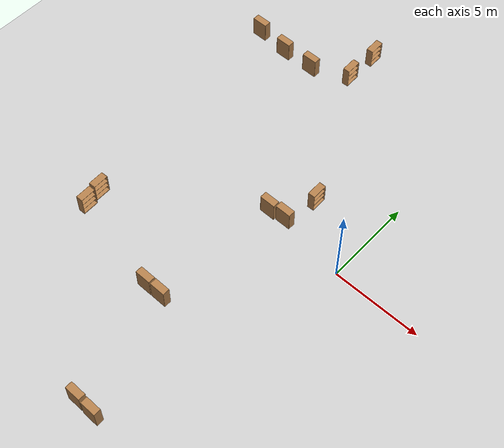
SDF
<sdf version="1.6">
 <world name="default">
  <model name="ground_plane">
   <static>1</static>
   <link name="link">
    <collision name="collision">
     <geometry><plane><normal>0 0 1</normal><size>100 100</size></plane></geometry>
     <surface>
      <contact><collide_bitmask>65535</collide_bitmask></contact>
      <friction><ode><mu>100</mu><mu2>50</mu2></ode></friction>
     </surface>
    </collision>
    <visual name="visual">
     <cast_shadows>0</cast_shadows>
     <geometry><plane><normal>0 0 1</normal><size>100 100</size></plane></geometry>
     <material>
      <script><uri>file://media/materials/scripts/gazebo.material</uri><name>Gazebo/Grey</name></script>
     </material>
    </visual>
   </link>
  </model>
  <model name="bookshelf_clone_clone_clone_0_clone_0_clone_3_clone_0_clone_clone_clone_clone_0_clone_clone">
   <static>1</static>
   <link name="link">
    <inertial><mass>1</mass></inertial>
    <collision name="back">
     <pose>0 0.005 0.6 0 -0 0</pose>
     <geometry><box><size>0.9 0.01 1.2</size></box></geometry>
    </collision>
    <visual name="visual1">
     <pose>0 0.005 0.6 0 -0 0</pose>
     <geometry><box><size>0.9 0.01 1.2</size></box></geometry>
     <material>
      <script><uri>file://media/materials/scripts/gazebo.material</uri><name>Gazebo/Wood</name></script>
     </material>
    </visual>
    <collision name="left_side">
     <pose>0.45 -0.195 0.6 0 -0 0</pose>
     <geometry><box><size>0.02 0.4 1.2</size></box></geometry>
    </collision>
    <visual name="visual2">
     <pose>0.45 -0.195 0.6 0 -0 0</pose>
     <geometry><box><size>0.02 0.4 1.2</size></box></geometry>
     <material>
      <script><uri>file://media/materials/scripts/gazebo.material</uri><name>Gazebo/Wood</name></script>
     </material>
    </visual>
    <collision name="right_side">
     <pose>-0.45 -0.195 0.6 0 -0 0</pose>
     <geometry><box><size>0.02 0.4 1.2</size></box></geometry>
    </collision>
    <visual name="visual3">
     <pose>-0.45 -0.195 0.6 0 -0 0</pose>
     <geometry><box><size>0.02 0.4 1.2</size></box></geometry>
     <material>
      <script><uri>file://media/materials/scripts/gazebo.material</uri><name>Gazebo/Wood</name></script>
     </material>
    </visual>
    <collision name="bottom">
     <pose>0 -0.195 0.03 0 -0 0</pose>
     <geometry><box><size>0.88 0.4 0.06</size></box></geometry>
    </collision>
    <visual name="visual4">
     <pose>0 -0.195 0.03 0 -0 0</pose>
     <geometry><box><size>0.88 0.4 0.06</size></box></geometry>
     <material>
      <script><uri>file://media/materials/scripts/gazebo.material</uri><name>Gazebo/Wood</name></script>
     </material>
    </visual>
    <collision name="top">
     <pose>0 -0.195 1.19 0 -0 0</pose>
     <geometry><box><size>0.88 0.4 0.02</size></box></geometry>
    </collision>
    <visual name="visual5">
     <pose>0 -0.195 1.19 0 -0 0</pose>
     <geometry><box><size>0.88 0.4 0.02</size></box></geometry>
     <material>
      <script><uri>file://media/materials/scripts/gazebo.material</uri><name>Gazebo/Wood</name></script>
     </material>
    </visual>
    <collision name="low_shelf">
     <pose>0 -0.195 0.43 0 -0 0</pose>
     <geometry><box><size>0.88 0.4 0.02</size></box></geometry>
    </collision>
    <visual name="visual6">
     <pose>0 -0.195 0.43 0 -0 0</pose>
     <geometry><box><size>0.88 0.4 0.02</size></box></geometry>
     <material>
      <script><uri>file://media/materials/scripts/gazebo.material</uri><name>Gazebo/Wood</name></script>
     </material>
    </visual>
    <collision name="high_shelf">
     <pose>0 -0.195 0.8 0 -0 0</pose>
     <geometry><box><size>0.88 0.4 0.02</size></box></geometry>
    </collision>
    <visual name="visual7">
     <pose>0 -0.195 0.8 0 -0 0</pose>
     <geometry><box><size>0.88 0.4 0.02</size></box></geometry>
     <material>
      <script><uri>file://media/materials/scripts/gazebo.material</uri><name>Gazebo/Wood</name></script>
     </material>
    </visual>
   </link>
   <pose>-3.7014 2.55568 0 0 -0 1.59147</pose>
  </model>
  <model name="bookshelf_clone_clone_clone_0_clone_0_clone_3_clone_clone_1_clone_clone_clone_clone">
   <static>1</static>
   <link name="link">
    <inertial><mass>1</mass></inertial>
    <collision name="back">
     <pose>0 0.005 0.6 0 -0 0</pose>
     <geometry><box><size>0.9 0.01 1.2</size></box></geometry>
    </collision>
    <visual name="visual1">
     <pose>0 0.005 0.6 0 -0 0</pose>
     <geometry><box><size>0.9 0.01 1.2</size></box></geometry>
     <material>
      <script><uri>file://media/materials/scripts/gazebo.material</uri><name>Gazebo/Wood</name></script>
     </material>
    </visual>
    <collision name="left_side">
     <pose>0.45 -0.195 0.6 0 -0 0</pose>
     <geometry><box><size>0.02 0.4 1.2</size></box></geometry>
    </collision>
    <visual name="visual2">
     <pose>0.45 -0.195 0.6 0 -0 0</pose>
     <geometry><box><size>0.02 0.4 1.2</size></box></geometry>
     <material>
      <script><uri>file://media/materials/scripts/gazebo.material</uri><name>Gazebo/Wood</name></script>
     </material>
    </visual>
    <collision name="right_side">
     <pose>-0.45 -0.195 0.6 0 -0 0</pose>
     <geometry><box><size>0.02 0.4 1.2</size></box></geometry>
    </collision>
    <visual name="visual3">
     <pose>-0.45 -0.195 0.6 0 -0 0</pose>
     <geometry><box><size>0.02 0.4 1.2</size></box></geometry>
     <material>
      <script><uri>file://media/materials/scripts/gazebo.material</uri><name>Gazebo/Wood</name></script>
     </material>
    </visual>
    <collision name="bottom">
     <pose>0 -0.195 0.03 0 -0 0</pose>
     <geometry><box><size>0.88 0.4 0.06</size></box></geometry>
    </collision>
    <visual name="visual4">
     <pose>0 -0.195 0.03 0 -0 0</pose>
     <geometry><box><size>0.88 0.4 0.06</size></box></geometry>
     <material>
      <script><uri>file://media/materials/scripts/gazebo.material</uri><name>Gazebo/Wood</name></script>
     </material>
    </visual>
    <collision name="top">
     <pose>0 -0.195 1.19 0 -0 0</pose>
     <geometry><box><size>0.88 0.4 0.02</size></box></geometry>
    </collision>
    <visual name="visual5">
     <pose>0 -0.195 1.19 0 -0 0</pose>
     <geometry><box><size>0.88 0.4 0.02</size></box></geometry>
     <material>
      <script><uri>file://media/materials/scripts/gazebo.material</uri><name>Gazebo/Wood</name></script>
     </material>
    </visual>
    <collision name="low_shelf">
     <pose>0 -0.195 0.43 0 -0 0</pose>
     <geometry><box><size>0.88 0.4 0.02</size></box></geometry>
    </collision>
    <visual name="visual6">
     <pose>0 -0.195 0.43 0 -0 0</pose>
     <geometry><box><size>0.88 0.4 0.02</size></box></geometry>
     <material>
      <script><uri>file://media/materials/scripts/gazebo.material</uri><name>Gazebo/Wood</name></script>
     </material>
    </visual>
    <collision name="high_shelf">
     <pose>0 -0.195 0.8 0 -0 0</pose>
     <geometry><box><size>0.88 0.4 0.02</size></box></geometry>
    </collision>
    <visual name="visual7">
     <pose>0 -0.195 0.8 0 -0 0</pose>
     <geometry><box><size>0.88 0.4 0.02</size></box></geometry>
     <material>
      <script><uri>file://media/materials/scripts/gazebo.material</uri><name>Gazebo/Wood</name></script>
     </material>
    </visual>
   </link>
   <pose>-3.93703 0.396484 0 0 -0 3.1368</pose>
  </model>
  <model name="bookshelf_clone_clone_clone_0_clone_0_clone_3_clone_clone_1_clone_clone_clone_clone_0">
   <static>1</static>
   <link name="link">
    <inertial><mass>1</mass></inertial>
    <collision name="back">
     <pose>0 0.005 0.6 0 -0 0</pose>
     <geometry><box><size>0.9 0.01 1.2</size></box></geometry>
    </collision>
    <visual name="visual1">
     <pose>0 0.005 0.6 0 -0 0</pose>
     <geometry><box><size>0.9 0.01 1.2</size></box></geometry>
     <material>
      <script><uri>file://media/materials/scripts/gazebo.material</uri><name>Gazebo/Wood</name></script>
     </material>
    </visual>
    <collision name="left_side">
     <pose>0.45 -0.195 0.6 0 -0 0</pose>
     <geometry><box><size>0.02 0.4 1.2</size></box></geometry>
    </collision>
    <visual name="visual2">
     <pose>0.45 -0.195 0.6 0 -0 0</pose>
     <geometry><box><size>0.02 0.4 1.2</size></box></geometry>
     <material>
      <script><uri>file://media/materials/scripts/gazebo.material</uri><name>Gazebo/Wood</name></script>
     </material>
    </visual>
    <collision name="right_side">
     <pose>-0.45 -0.195 0.6 0 -0 0</pose>
     <geometry><box><size>0.02 0.4 1.2</size></box></geometry>
    </collision>
    <visual name="visual3">
     <pose>-0.45 -0.195 0.6 0 -0 0</pose>
     <geometry><box><size>0.02 0.4 1.2</size></box></geometry>
     <material>
      <script><uri>file://media/materials/scripts/gazebo.material</uri><name>Gazebo/Wood</name></script>
     </material>
    </visual>
    <collision name="bottom">
     <pose>0 -0.195 0.03 0 -0 0</pose>
     <geometry><box><size>0.88 0.4 0.06</size></box></geometry>
    </collision>
    <visual name="visual4">
     <pose>0 -0.195 0.03 0 -0 0</pose>
     <geometry><box><size>0.88 0.4 0.06</size></box></geometry>
     <material>
      <script><uri>file://media/materials/scripts/gazebo.material</uri><name>Gazebo/Wood</name></script>
     </material>
    </visual>
    <collision name="top">
     <pose>0 -0.195 1.19 0 -0 0</pose>
     <geometry><box><size>0.88 0.4 0.02</size></box></geometry>
    </collision>
    <visual name="visual5">
     <pose>0 -0.195 1.19 0 -0 0</pose>
     <geometry><box><size>0.88 0.4 0.02</size></box></geometry>
     <material>
      <script><uri>file://media/materials/scripts/gazebo.material</uri><name>Gazebo/Wood</name></script>
     </material>
    </visual>
    <collision name="low_shelf">
     <pose>0 -0.195 0.43 0 -0 0</pose>
     <geometry><box><size>0.88 0.4 0.02</size></box></geometry>
    </collision>
    <visual name="visual6">
     <pose>0 -0.195 0.43 0 -0 0</pose>
     <geometry><box><size>0.88 0.4 0.02</size></box></geometry>
     <material>
      <script><uri>file://media/materials/scripts/gazebo.material</uri><name>Gazebo/Wood</name></script>
     </material>
    </visual>
    <collision name="high_shelf">
     <pose>0 -0.195 0.8 0 -0 0</pose>
     <geometry><box><size>0.88 0.4 0.02</size></box></geometry>
    </collision>
    <visual name="visual7">
     <pose>0 -0.195 0.8 0 -0 0</pose>
     <geometry><box><size>0.88 0.4 0.02</size></box></geometry>
     <material>
      <script><uri>file://media/materials/scripts/gazebo.material</uri><name>Gazebo/Wood</name></script>
     </material>
    </visual>
   </link>
   <pose>-4.90125 0.298525 0 0 -0 3.1368</pose>
  </model>
  <model name="bookshelf_clone_clone_clone_0_clone_0_clone_3_clone_clone_1_clone_clone_clone_clone_clone">
   <static>1</static>
   <link name="link">
    <inertial><mass>1</mass></inertial>
    <collision name="back">
     <pose>0 0.005 0.6 0 -0 0</pose>
     <geometry><box><size>0.9 0.01 1.2</size></box></geometry>
    </collision>
    <visual name="visual1">
     <pose>0 0.005 0.6 0 -0 0</pose>
     <geometry><box><size>0.9 0.01 1.2</size></box></geometry>
     <material>
      <script><uri>file://media/materials/scripts/gazebo.material</uri><name>Gazebo/Wood</name></script>
     </material>
    </visual>
    <collision name="left_side">
     <pose>0.45 -0.195 0.6 0 -0 0</pose>
     <geometry><box><size>0.02 0.4 1.2</size></box></geometry>
    </collision>
    <visual name="visual2">
     <pose>0.45 -0.195 0.6 0 -0 0</pose>
     <geometry><box><size>0.02 0.4 1.2</size></box></geometry>
     <material>
      <script><uri>file://media/materials/scripts/gazebo.material</uri><name>Gazebo/Wood</name></script>
     </material>
    </visual>
    <collision name="right_side">
     <pose>-0.45 -0.195 0.6 0 -0 0</pose>
     <geometry><box><size>0.02 0.4 1.2</size></box></geometry>
    </collision>
    <visual name="visual3">
     <pose>-0.45 -0.195 0.6 0 -0 0</pose>
     <geometry><box><size>0.02 0.4 1.2</size></box></geometry>
     <material>
      <script><uri>file://media/materials/scripts/gazebo.material</uri><name>Gazebo/Wood</name></script>
     </material>
    </visual>
    <collision name="bottom">
     <pose>0 -0.195 0.03 0 -0 0</pose>
     <geometry><box><size>0.88 0.4 0.06</size></box></geometry>
    </collision>
    <visual name="visual4">
     <pose>0 -0.195 0.03 0 -0 0</pose>
     <geometry><box><size>0.88 0.4 0.06</size></box></geometry>
     <material>
      <script><uri>file://media/materials/scripts/gazebo.material</uri><name>Gazebo/Wood</name></script>
     </material>
    </visual>
    <collision name="top">
     <pose>0 -0.195 1.19 0 -0 0</pose>
     <geometry><box><size>0.88 0.4 0.02</size></box></geometry>
    </collision>
    <visual name="visual5">
     <pose>0 -0.195 1.19 0 -0 0</pose>
     <geometry><box><size>0.88 0.4 0.02</size></box></geometry>
     <material>
      <script><uri>file://media/materials/scripts/gazebo.material</uri><name>Gazebo/Wood</name></script>
     </material>
    </visual>
    <collision name="low_shelf">
     <pose>0 -0.195 0.43 0 -0 0</pose>
     <geometry><box><size>0.88 0.4 0.02</size></box></geometry>
    </collision>
    <visual name="visual6">
     <pose>0 -0.195 0.43 0 -0 0</pose>
     <geometry><box><size>0.88 0.4 0.02</size></box></geometry>
     <material>
      <script><uri>file://media/materials/scripts/gazebo.material</uri><name>Gazebo/Wood</name></script>
     </material>
    </visual>
    <collision name="high_shelf">
     <pose>0 -0.195 0.8 0 -0 0</pose>
     <geometry><box><size>0.88 0.4 0.02</size></box></geometry>
    </collision>
    <visual name="visual7">
     <pose>0 -0.195 0.8 0 -0 0</pose>
     <geometry><box><size>0.88 0.4 0.02</size></box></geometry>
     <material>
      <script><uri>file://media/materials/scripts/gazebo.material</uri><name>Gazebo/Wood</name></script>
     </material>
    </visual>
   </link>
   <pose>-3.38403 -13.4046 0 0 -0 3.1368</pose>
  </model>
  <model name="bookshelf_clone_clone_clone_0_clone_0_clone_3_clone_clone_1_clone_clone_clone_clone_clone_0">
   <static>1</static>
   <link name="link">
    <inertial><mass>1</mass></inertial>
    <collision name="back">
     <pose>0 0.005 0.6 0 -0 0</pose>
     <geometry><box><size>0.9 0.01 1.2</size></box></geometry>
    </collision>
    <visual name="visual1">
     <pose>0 0.005 0.6 0 -0 0</pose>
     <geometry><box><size>0.9 0.01 1.2</size></box></geometry>
     <material>
      <script><uri>file://media/materials/scripts/gazebo.material</uri><name>Gazebo/Wood</name></script>
     </material>
    </visual>
    <collision name="left_side">
     <pose>0.45 -0.195 0.6 0 -0 0</pose>
     <geometry><box><size>0.02 0.4 1.2</size></box></geometry>
    </collision>
    <visual name="visual2">
     <pose>0.45 -0.195 0.6 0 -0 0</pose>
     <geometry><box><size>0.02 0.4 1.2</size></box></geometry>
     <material>
      <script><uri>file://media/materials/scripts/gazebo.material</uri><name>Gazebo/Wood</name></script>
     </material>
    </visual>
    <collision name="right_side">
     <pose>-0.45 -0.195 0.6 0 -0 0</pose>
     <geometry><box><size>0.02 0.4 1.2</size></box></geometry>
    </collision>
    <visual name="visual3">
     <pose>-0.45 -0.195 0.6 0 -0 0</pose>
     <geometry><box><size>0.02 0.4 1.2</size></box></geometry>
     <material>
      <script><uri>file://media/materials/scripts/gazebo.material</uri><name>Gazebo/Wood</name></script>
     </material>
    </visual>
    <collision name="bottom">
     <pose>0 -0.195 0.03 0 -0 0</pose>
     <geometry><box><size>0.88 0.4 0.06</size></box></geometry>
    </collision>
    <visual name="visual4">
     <pose>0 -0.195 0.03 0 -0 0</pose>
     <geometry><box><size>0.88 0.4 0.06</size></box></geometry>
     <material>
      <script><uri>file://media/materials/scripts/gazebo.material</uri><name>Gazebo/Wood</name></script>
     </material>
    </visual>
    <collision name="top">
     <pose>0 -0.195 1.19 0 -0 0</pose>
     <geometry><box><size>0.88 0.4 0.02</size></box></geometry>
    </collision>
    <visual name="visual5">
     <pose>0 -0.195 1.19 0 -0 0</pose>
     <geometry><box><size>0.88 0.4 0.02</size></box></geometry>
     <material>
      <script><uri>file://media/materials/scripts/gazebo.material</uri><name>Gazebo/Wood</name></script>
     </material>
    </visual>
    <collision name="low_shelf">
     <pose>0 -0.195 0.43 0 -0 0</pose>
     <geometry><box><size>0.88 0.4 0.02</size></box></geometry>
    </collision>
    <visual name="visual6">
     <pose>0 -0.195 0.43 0 -0 0</pose>
     <geometry><box><size>0.88 0.4 0.02</size></box></geometry>
     <material>
      <script><uri>file://media/materials/scripts/gazebo.material</uri><name>Gazebo/Wood</name></script>
     </material>
    </visual>
    <collision name="high_shelf">
     <pose>0 -0.195 0.8 0 -0 0</pose>
     <geometry><box><size>0.88 0.4 0.02</size></box></geometry>
    </collision>
    <visual name="visual7">
     <pose>0 -0.195 0.8 0 -0 0</pose>
     <geometry><box><size>0.88 0.4 0.02</size></box></geometry>
     <material>
      <script><uri>file://media/materials/scripts/gazebo.material</uri><name>Gazebo/Wood</name></script>
     </material>
    </visual>
   </link>
   <pose>-4.43219 -13.3705 0 0 -0 3.1368</pose>
  </model>
  <model name="bookshelf_clone_clone_clone_0_clone_0_clone_3_clone_clone_1_clone_clone_clone_clone_clone_1">
   <static>1</static>
   <link name="link">
    <inertial><mass>1</mass></inertial>
    <collision name="back">
     <pose>0 0.005 0.6 0 -0 0</pose>
     <geometry><box><size>0.9 0.01 1.2</size></box></geometry>
    </collision>
    <visual name="visual1">
     <pose>0 0.005 0.6 0 -0 0</pose>
     <geometry><box><size>0.9 0.01 1.2</size></box></geometry>
     <material>
      <script><uri>file://media/materials/scripts/gazebo.material</uri><name>Gazebo/Wood</name></script>
     </material>
    </visual>
    <collision name="left_side">
     <pose>0.45 -0.195 0.6 0 -0 0</pose>
     <geometry><box><size>0.02 0.4 1.2</size></box></geometry>
    </collision>
    <visual name="visual2">
     <pose>0.45 -0.195 0.6 0 -0 0</pose>
     <geometry><box><size>0.02 0.4 1.2</size></box></geometry>
     <material>
      <script><uri>file://media/materials/scripts/gazebo.material</uri><name>Gazebo/Wood</name></script>
     </material>
    </visual>
    <collision name="right_side">
     <pose>-0.45 -0.195 0.6 0 -0 0</pose>
     <geometry><box><size>0.02 0.4 1.2</size></box></geometry>
    </collision>
    <visual name="visual3">
     <pose>-0.45 -0.195 0.6 0 -0 0</pose>
     <geometry><box><size>0.02 0.4 1.2</size></box></geometry>
     <material>
      <script><uri>file://media/materials/scripts/gazebo.material</uri><name>Gazebo/Wood</name></script>
     </material>
    </visual>
    <collision name="bottom">
     <pose>0 -0.195 0.03 0 -0 0</pose>
     <geometry><box><size>0.88 0.4 0.06</size></box></geometry>
    </collision>
    <visual name="visual4">
     <pose>0 -0.195 0.03 0 -0 0</pose>
     <geometry><box><size>0.88 0.4 0.06</size></box></geometry>
     <material>
      <script><uri>file://media/materials/scripts/gazebo.material</uri><name>Gazebo/Wood</name></script>
     </material>
    </visual>
    <collision name="top">
     <pose>0 -0.195 1.19 0 -0 0</pose>
     <geometry><box><size>0.88 0.4 0.02</size></box></geometry>
    </collision>
    <visual name="visual5">
     <pose>0 -0.195 1.19 0 -0 0</pose>
     <geometry><box><size>0.88 0.4 0.02</size></box></geometry>
     <material>
      <script><uri>file://media/materials/scripts/gazebo.material</uri><name>Gazebo/Wood</name></script>
     </material>
    </visual>
    <collision name="low_shelf">
     <pose>0 -0.195 0.43 0 -0 0</pose>
     <geometry><box><size>0.88 0.4 0.02</size></box></geometry>
    </collision>
    <visual name="visual6">
     <pose>0 -0.195 0.43 0 -0 0</pose>
     <geometry><box><size>0.88 0.4 0.02</size></box></geometry>
     <material>
      <script><uri>file://media/materials/scripts/gazebo.material</uri><name>Gazebo/Wood</name></script>
     </material>
    </visual>
    <collision name="high_shelf">
     <pose>0 -0.195 0.8 0 -0 0</pose>
     <geometry><box><size>0.88 0.4 0.02</size></box></geometry>
    </collision>
    <visual name="visual7">
     <pose>0 -0.195 0.8 0 -0 0</pose>
     <geometry><box><size>0.88 0.4 0.02</size></box></geometry>
     <material>
      <script><uri>file://media/materials/scripts/gazebo.material</uri><name>Gazebo/Wood</name></script>
     </material>
    </visual>
   </link>
   <pose>-5.43616 -7.03663 0 0 -0 3.1368</pose>
  </model>
  <model name="bookshelf_clone_clone_clone_0_clone_0_clone_3_clone_clone_1_clone_clone_clone_clone_clone_2">
   <static>1</static>
   <link name="link">
    <inertial><mass>1</mass></inertial>
    <collision name="back">
     <pose>0 0.005 0.6 0 -0 0</pose>
     <geometry><box><size>0.9 0.01 1.2</size></box></geometry>
    </collision>
    <visual name="visual1">
     <pose>0 0.005 0.6 0 -0 0</pose>
     <geometry><box><size>0.9 0.01 1.2</size></box></geometry>
     <material>
      <script><uri>file://media/materials/scripts/gazebo.material</uri><name>Gazebo/Wood</name></script>
     </material>
    </visual>
    <collision name="left_side">
     <pose>0.45 -0.195 0.6 0 -0 0</pose>
     <geometry><box><size>0.02 0.4 1.2</size></box></geometry>
    </collision>
    <visual name="visual2">
     <pose>0.45 -0.195 0.6 0 -0 0</pose>
     <geometry><box><size>0.02 0.4 1.2</size></box></geometry>
     <material>
      <script><uri>file://media/materials/scripts/gazebo.material</uri><name>Gazebo/Wood</name></script>
     </material>
    </visual>
    <collision name="right_side">
     <pose>-0.45 -0.195 0.6 0 -0 0</pose>
     <geometry><box><size>0.02 0.4 1.2</size></box></geometry>
    </collision>
    <visual name="visual3">
     <pose>-0.45 -0.195 0.6 0 -0 0</pose>
     <geometry><box><size>0.02 0.4 1.2</size></box></geometry>
     <material>
      <script><uri>file://media/materials/scripts/gazebo.material</uri><name>Gazebo/Wood</name></script>
     </material>
    </visual>
    <collision name="bottom">
     <pose>0 -0.195 0.03 0 -0 0</pose>
     <geometry><box><size>0.88 0.4 0.06</size></box></geometry>
    </collision>
    <visual name="visual4">
     <pose>0 -0.195 0.03 0 -0 0</pose>
     <geometry><box><size>0.88 0.4 0.06</size></box></geometry>
     <material>
      <script><uri>file://media/materials/scripts/gazebo.material</uri><name>Gazebo/Wood</name></script>
     </material>
    </visual>
    <collision name="top">
     <pose>0 -0.195 1.19 0 -0 0</pose>
     <geometry><box><size>0.88 0.4 0.02</size></box></geometry>
    </collision>
    <visual name="visual5">
     <pose>0 -0.195 1.19 0 -0 0</pose>
     <geometry><box><size>0.88 0.4 0.02</size></box></geometry>
     <material>
      <script><uri>file://media/materials/scripts/gazebo.material</uri><name>Gazebo/Wood</name></script>
     </material>
    </visual>
    <collision name="low_shelf">
     <pose>0 -0.195 0.43 0 -0 0</pose>
     <geometry><box><size>0.88 0.4 0.02</size></box></geometry>
    </collision>
    <visual name="visual6">
     <pose>0 -0.195 0.43 0 -0 0</pose>
     <geometry><box><size>0.88 0.4 0.02</size></box></geometry>
     <material>
      <script><uri>file://media/materials/scripts/gazebo.material</uri><name>Gazebo/Wood</name></script>
     </material>
    </visual>
    <collision name="high_shelf">
     <pose>0 -0.195 0.8 0 -0 0</pose>
     <geometry><box><size>0.88 0.4 0.02</size></box></geometry>
    </collision>
    <visual name="visual7">
     <pose>0 -0.195 0.8 0 -0 0</pose>
     <geometry><box><size>0.88 0.4 0.02</size></box></geometry>
     <material>
      <script><uri>file://media/materials/scripts/gazebo.material</uri><name>Gazebo/Wood</name></script>
     </material>
    </visual>
   </link>
   <pose>-6.4145 -7.03785 0 0 -0 3.1368</pose>
  </model>
  <model name="bookshelf_clone_clone_clone_0_clone_0_clone_3_clone_0_clone_clone_clone_clone_0_clone_clone_clone_0_clone_clone_0">
   <static>1</static>
   <link name="link">
    <inertial><mass>1</mass></inertial>
    <collision name="back">
     <pose>0 0.005 0.6 0 -0 0</pose>
     <geometry><box><size>0.9 0.01 1.2</size></box></geometry>
    </collision>
    <visual name="visual1">
     <pose>0 0.005 0.6 0 -0 0</pose>
     <geometry><box><size>0.9 0.01 1.2</size></box></geometry>
     <material>
      <script><uri>file://media/materials/scripts/gazebo.material</uri><name>Gazebo/Wood</name></script>
     </material>
    </visual>
    <collision name="left_side">
     <pose>0.45 -0.195 0.6 0 -0 0</pose>
     <geometry><box><size>0.02 0.4 1.2</size></box></geometry>
    </collision>
    <visual name="visual2">
     <pose>0.45 -0.195 0.6 0 -0 0</pose>
     <geometry><box><size>0.02 0.4 1.2</size></box></geometry>
     <material>
      <script><uri>file://media/materials/scripts/gazebo.material</uri><name>Gazebo/Wood</name></script>
     </material>
    </visual>
    <collision name="right_side">
     <pose>-0.45 -0.195 0.6 0 -0 0</pose>
     <geometry><box><size>0.02 0.4 1.2</size></box></geometry>
    </collision>
    <visual name="visual3">
     <pose>-0.45 -0.195 0.6 0 -0 0</pose>
     <geometry><box><size>0.02 0.4 1.2</size></box></geometry>
     <material>
      <script><uri>file://media/materials/scripts/gazebo.material</uri><name>Gazebo/Wood</name></script>
     </material>
    </visual>
    <collision name="bottom">
     <pose>0 -0.195 0.03 0 -0 0</pose>
     <geometry><box><size>0.88 0.4 0.06</size></box></geometry>
    </collision>
    <visual name="visual4">
     <pose>0 -0.195 0.03 0 -0 0</pose>
     <geometry><box><size>0.88 0.4 0.06</size></box></geometry>
     <material>
      <script><uri>file://media/materials/scripts/gazebo.material</uri><name>Gazebo/Wood</name></script>
     </material>
    </visual>
    <collision name="top">
     <pose>0 -0.195 1.19 0 -0 0</pose>
     <geometry><box><size>0.88 0.4 0.02</size></box></geometry>
    </collision>
    <visual name="visual5">
     <pose>0 -0.195 1.19 0 -0 0</pose>
     <geometry><box><size>0.88 0.4 0.02</size></box></geometry>
     <material>
      <script><uri>file://media/materials/scripts/gazebo.material</uri><name>Gazebo/Wood</name></script>
     </material>
    </visual>
    <collision name="low_shelf">
     <pose>0 -0.195 0.43 0 -0 0</pose>
     <geometry><box><size>0.88 0.4 0.02</size></box></geometry>
    </collision>
    <visual name="visual6">
     <pose>0 -0.195 0.43 0 -0 0</pose>
     <geometry><box><size>0.88 0.4 0.02</size></box></geometry>
     <material>
      <script><uri>file://media/materials/scripts/gazebo.material</uri><name>Gazebo/Wood</name></script>
     </material>
    </visual>
    <collision name="high_shelf">
     <pose>0 -0.195 0.8 0 -0 0</pose>
     <geometry><box><size>0.88 0.4 0.02</size></box></geometry>
    </collision>
    <visual name="visual7">
     <pose>0 -0.195 0.8 0 -0 0</pose>
     <geometry><box><size>0.88 0.4 0.02</size></box></geometry>
     <material>
      <script><uri>file://media/materials/scripts/gazebo.material</uri><name>Gazebo/Wood</name></script>
     </material>
    </visual>
   </link>
   <pose>-12.4051 -4.5694 0 0 -0 1.59147</pose>
  </model>
  <model name="bookshelf_clone_clone_clone_0_clone_0_clone_3_clone_0_clone_clone_clone_clone_0_clone_clone_clone_0_clone_clone_1">
   <static>1</static>
   <link name="link">
    <inertial><mass>1</mass></inertial>
    <collision name="back">
     <pose>0 0.005 0.6 0 -0 0</pose>
     <geometry><box><size>0.9 0.01 1.2</size></box></geometry>
    </collision>
    <visual name="visual1">
     <pose>0 0.005 0.6 0 -0 0</pose>
     <geometry><box><size>0.9 0.01 1.2</size></box></geometry>
     <material>
      <script><uri>file://media/materials/scripts/gazebo.material</uri><name>Gazebo/Wood</name></script>
     </material>
    </visual>
    <collision name="left_side">
     <pose>0.45 -0.195 0.6 0 -0 0</pose>
     <geometry><box><size>0.02 0.4 1.2</size></box></geometry>
    </collision>
    <visual name="visual2">
     <pose>0.45 -0.195 0.6 0 -0 0</pose>
     <geometry><box><size>0.02 0.4 1.2</size></box></geometry>
     <material>
      <script><uri>file://media/materials/scripts/gazebo.material</uri><name>Gazebo/Wood</name></script>
     </material>
    </visual>
    <collision name="right_side">
     <pose>-0.45 -0.195 0.6 0 -0 0</pose>
     <geometry><box><size>0.02 0.4 1.2</size></box></geometry>
    </collision>
    <visual name="visual3">
     <pose>-0.45 -0.195 0.6 0 -0 0</pose>
     <geometry><box><size>0.02 0.4 1.2</size></box></geometry>
     <material>
      <script><uri>file://media/materials/scripts/gazebo.material</uri><name>Gazebo/Wood</name></script>
     </material>
    </visual>
    <collision name="bottom">
     <pose>0 -0.195 0.03 0 -0 0</pose>
     <geometry><box><size>0.88 0.4 0.06</size></box></geometry>
    </collision>
    <visual name="visual4">
     <pose>0 -0.195 0.03 0 -0 0</pose>
     <geometry><box><size>0.88 0.4 0.06</size></box></geometry>
     <material>
      <script><uri>file://media/materials/scripts/gazebo.material</uri><name>Gazebo/Wood</name></script>
     </material>
    </visual>
    <collision name="top">
     <pose>0 -0.195 1.19 0 -0 0</pose>
     <geometry><box><size>0.88 0.4 0.02</size></box></geometry>
    </collision>
    <visual name="visual5">
     <pose>0 -0.195 1.19 0 -0 0</pose>
     <geometry><box><size>0.88 0.4 0.02</size></box></geometry>
     <material>
      <script><uri>file://media/materials/scripts/gazebo.material</uri><name>Gazebo/Wood</name></script>
     </material>
    </visual>
    <collision name="low_shelf">
     <pose>0 -0.195 0.43 0 -0 0</pose>
     <geometry><box><size>0.88 0.4 0.02</size></box></geometry>
    </collision>
    <visual name="visual6">
     <pose>0 -0.195 0.43 0 -0 0</pose>
     <geometry><box><size>0.88 0.4 0.02</size></box></geometry>
     <material>
      <script><uri>file://media/materials/scripts/gazebo.material</uri><name>Gazebo/Wood</name></script>
     </material>
    </visual>
    <collision name="high_shelf">
     <pose>0 -0.195 0.8 0 -0 0</pose>
     <geometry><box><size>0.88 0.4 0.02</size></box></geometry>
    </collision>
    <visual name="visual7">
     <pose>0 -0.195 0.8 0 -0 0</pose>
     <geometry><box><size>0.88 0.4 0.02</size></box></geometry>
     <material>
      <script><uri>file://media/materials/scripts/gazebo.material</uri><name>Gazebo/Wood</name></script>
     </material>
    </visual>
   </link>
   <pose>-12.2622 -5.57408 0 0 -0 1.59147</pose>
  </model>
  <model name="bookshelf_clone_clone_clone_0_clone_0_clone_3_clone_clone_1_clone_clone_clone_clone_clone_4">
   <static>1</static>
   <link name="link">
    <inertial><mass>1</mass></inertial>
    <collision name="back">
     <pose>0 0.005 0.6 0 -0 0</pose>
     <geometry><box><size>0.9 0.01 1.2</size></box></geometry>
    </collision>
    <visual name="visual1">
     <pose>0 0.005 0.6 0 -0 0</pose>
     <geometry><box><size>0.9 0.01 1.2</size></box></geometry>
     <material>
      <script><uri>file://media/materials/scripts/gazebo.material</uri><name>Gazebo/Wood</name></script>
     </material>
    </visual>
    <collision name="left_side">
     <pose>0.45 -0.195 0.6 0 -0 0</pose>
     <geometry><box><size>0.02 0.4 1.2</size></box></geometry>
    </collision>
    <visual name="visual2">
     <pose>0.45 -0.195 0.6 0 -0 0</pose>
     <geometry><box><size>0.02 0.4 1.2</size></box></geometry>
     <material>
      <script><uri>file://media/materials/scripts/gazebo.material</uri><name>Gazebo/Wood</name></script>
     </material>
    </visual>
    <collision name="right_side">
     <pose>-0.45 -0.195 0.6 0 -0 0</pose>
     <geometry><box><size>0.02 0.4 1.2</size></box></geometry>
    </collision>
    <visual name="visual3">
     <pose>-0.45 -0.195 0.6 0 -0 0</pose>
     <geometry><box><size>0.02 0.4 1.2</size></box></geometry>
     <material>
      <script><uri>file://media/materials/scripts/gazebo.material</uri><name>Gazebo/Wood</name></script>
     </material>
    </visual>
    <collision name="bottom">
     <pose>0 -0.195 0.03 0 -0 0</pose>
     <geometry><box><size>0.88 0.4 0.06</size></box></geometry>
    </collision>
    <visual name="visual4">
     <pose>0 -0.195 0.03 0 -0 0</pose>
     <geometry><box><size>0.88 0.4 0.06</size></box></geometry>
     <material>
      <script><uri>file://media/materials/scripts/gazebo.material</uri><name>Gazebo/Wood</name></script>
     </material>
    </visual>
    <collision name="top">
     <pose>0 -0.195 1.19 0 -0 0</pose>
     <geometry><box><size>0.88 0.4 0.02</size></box></geometry>
    </collision>
    <visual name="visual5">
     <pose>0 -0.195 1.19 0 -0 0</pose>
     <geometry><box><size>0.88 0.4 0.02</size></box></geometry>
     <material>
      <script><uri>file://media/materials/scripts/gazebo.material</uri><name>Gazebo/Wood</name></script>
     </material>
    </visual>
    <collision name="low_shelf">
     <pose>0 -0.195 0.43 0 -0 0</pose>
     <geometry><box><size>0.88 0.4 0.02</size></box></geometry>
    </collision>
    <visual name="visual6">
     <pose>0 -0.195 0.43 0 -0 0</pose>
     <geometry><box><size>0.88 0.4 0.02</size></box></geometry>
     <material>
      <script><uri>file://media/materials/scripts/gazebo.material</uri><name>Gazebo/Wood</name></script>
     </material>
    </visual>
    <collision name="high_shelf">
     <pose>0 -0.195 0.8 0 -0 0</pose>
     <geometry><box><size>0.88 0.4 0.02</size></box></geometry>
    </collision>
    <visual name="visual7">
     <pose>0 -0.195 0.8 0 -0 0</pose>
     <geometry><box><size>0.88 0.4 0.02</size></box></geometry>
     <material>
      <script><uri>file://media/materials/scripts/gazebo.material</uri><name>Gazebo/Wood</name></script>
     </material>
    </visual>
   </link>
   <pose>-13.5281 9.2641 0 0 -0 3.1368</pose>
  </model>
  <model name="bookshelf_clone_clone_clone_0_clone_0_clone_3_clone_clone_1_clone_clone_clone_clone_clone_6">
   <static>1</static>
   <link name="link">
    <inertial><mass>1</mass></inertial>
    <collision name="back">
     <pose>0 0.005 0.6 0 -0 0</pose>
     <geometry><box><size>0.9 0.01 1.2</size></box></geometry>
    </collision>
    <visual name="visual1">
     <pose>0 0.005 0.6 0 -0 0</pose>
     <geometry><box><size>0.9 0.01 1.2</size></box></geometry>
     <material>
      <script><uri>file://media/materials/scripts/gazebo.material</uri><name>Gazebo/Wood</name></script>
     </material>
    </visual>
    <collision name="left_side">
     <pose>0.45 -0.195 0.6 0 -0 0</pose>
     <geometry><box><size>0.02 0.4 1.2</size></box></geometry>
    </collision>
    <visual name="visual2">
     <pose>0.45 -0.195 0.6 0 -0 0</pose>
     <geometry><box><size>0.02 0.4 1.2</size></box></geometry>
     <material>
      <script><uri>file://media/materials/scripts/gazebo.material</uri><name>Gazebo/Wood</name></script>
     </material>
    </visual>
    <collision name="right_side">
     <pose>-0.45 -0.195 0.6 0 -0 0</pose>
     <geometry><box><size>0.02 0.4 1.2</size></box></geometry>
    </collision>
    <visual name="visual3">
     <pose>-0.45 -0.195 0.6 0 -0 0</pose>
     <geometry><box><size>0.02 0.4 1.2</size></box></geometry>
     <material>
      <script><uri>file://media/materials/scripts/gazebo.material</uri><name>Gazebo/Wood</name></script>
     </material>
    </visual>
    <collision name="bottom">
     <pose>0 -0.195 0.03 0 -0 0</pose>
     <geometry><box><size>0.88 0.4 0.06</size></box></geometry>
    </collision>
    <visual name="visual4">
     <pose>0 -0.195 0.03 0 -0 0</pose>
     <geometry><box><size>0.88 0.4 0.06</size></box></geometry>
     <material>
      <script><uri>file://media/materials/scripts/gazebo.material</uri><name>Gazebo/Wood</name></script>
     </material>
    </visual>
    <collision name="top">
     <pose>0 -0.195 1.19 0 -0 0</pose>
     <geometry><box><size>0.88 0.4 0.02</size></box></geometry>
    </collision>
    <visual name="visual5">
     <pose>0 -0.195 1.19 0 -0 0</pose>
     <geometry><box><size>0.88 0.4 0.02</size></box></geometry>
     <material>
      <script><uri>file://media/materials/scripts/gazebo.material</uri><name>Gazebo/Wood</name></script>
     </material>
    </visual>
    <collision name="low_shelf">
     <pose>0 -0.195 0.43 0 -0 0</pose>
     <geometry><box><size>0.88 0.4 0.02</size></box></geometry>
    </collision>
    <visual name="visual6">
     <pose>0 -0.195 0.43 0 -0 0</pose>
     <geometry><box><size>0.88 0.4 0.02</size></box></geometry>
     <material>
      <script><uri>file://media/materials/scripts/gazebo.material</uri><name>Gazebo/Wood</name></script>
     </material>
    </visual>
    <collision name="high_shelf">
     <pose>0 -0.195 0.8 0 -0 0</pose>
     <geometry><box><size>0.88 0.4 0.02</size></box></geometry>
    </collision>
    <visual name="visual7">
     <pose>0 -0.195 0.8 0 -0 0</pose>
     <geometry><box><size>0.88 0.4 0.02</size></box></geometry>
     <material>
      <script><uri>file://media/materials/scripts/gazebo.material</uri><name>Gazebo/Wood</name></script>
     </material>
    </visual>
   </link>
   <pose>-11.5244 9.02886 0 0 -0 3.1368</pose>
  </model>
  <model name="bookshelf_clone_clone_clone_0_clone_0_clone_3_clone_clone_1_clone_clone_clone_clone_clone_6_clone_0">
   <static>1</static>
   <link name="link">
    <inertial><mass>1</mass></inertial>
    <collision name="back">
     <pose>0 0.005 0.6 0 -0 0</pose>
     <geometry><box><size>0.9 0.01 1.2</size></box></geometry>
    </collision>
    <visual name="visual1">
     <pose>0 0.005 0.6 0 -0 0</pose>
     <geometry><box><size>0.9 0.01 1.2</size></box></geometry>
     <material>
      <script><uri>file://media/materials/scripts/gazebo.material</uri><name>Gazebo/Wood</name></script>
     </material>
    </visual>
    <collision name="left_side">
     <pose>0.45 -0.195 0.6 0 -0 0</pose>
     <geometry><box><size>0.02 0.4 1.2</size></box></geometry>
    </collision>
    <visual name="visual2">
     <pose>0.45 -0.195 0.6 0 -0 0</pose>
     <geometry><box><size>0.02 0.4 1.2</size></box></geometry>
     <material>
      <script><uri>file://media/materials/scripts/gazebo.material</uri><name>Gazebo/Wood</name></script>
     </material>
    </visual>
    <collision name="right_side">
     <pose>-0.45 -0.195 0.6 0 -0 0</pose>
     <geometry><box><size>0.02 0.4 1.2</size></box></geometry>
    </collision>
    <visual name="visual3">
     <pose>-0.45 -0.195 0.6 0 -0 0</pose>
     <geometry><box><size>0.02 0.4 1.2</size></box></geometry>
     <material>
      <script><uri>file://media/materials/scripts/gazebo.material</uri><name>Gazebo/Wood</name></script>
     </material>
    </visual>
    <collision name="bottom">
     <pose>0 -0.195 0.03 0 -0 0</pose>
     <geometry><box><size>0.88 0.4 0.06</size></box></geometry>
    </collision>
    <visual name="visual4">
     <pose>0 -0.195 0.03 0 -0 0</pose>
     <geometry><box><size>0.88 0.4 0.06</size></box></geometry>
     <material>
      <script><uri>file://media/materials/scripts/gazebo.material</uri><name>Gazebo/Wood</name></script>
     </material>
    </visual>
    <collision name="top">
     <pose>0 -0.195 1.19 0 -0 0</pose>
     <geometry><box><size>0.88 0.4 0.02</size></box></geometry>
    </collision>
    <visual name="visual5">
     <pose>0 -0.195 1.19 0 -0 0</pose>
     <geometry><box><size>0.88 0.4 0.02</size></box></geometry>
     <material>
      <script><uri>file://media/materials/scripts/gazebo.material</uri><name>Gazebo/Wood</name></script>
     </material>
    </visual>
    <collision name="low_shelf">
     <pose>0 -0.195 0.43 0 -0 0</pose>
     <geometry><box><size>0.88 0.4 0.02</size></box></geometry>
    </collision>
    <visual name="visual6">
     <pose>0 -0.195 0.43 0 -0 0</pose>
     <geometry><box><size>0.88 0.4 0.02</size></box></geometry>
     <material>
      <script><uri>file://media/materials/scripts/gazebo.material</uri><name>Gazebo/Wood</name></script>
     </material>
    </visual>
    <collision name="high_shelf">
     <pose>0 -0.195 0.8 0 -0 0</pose>
     <geometry><box><size>0.88 0.4 0.02</size></box></geometry>
    </collision>
    <visual name="visual7">
     <pose>0 -0.195 0.8 0 -0 0</pose>
     <geometry><box><size>0.88 0.4 0.02</size></box></geometry>
     <material>
      <script><uri>file://media/materials/scripts/gazebo.material</uri><name>Gazebo/Wood</name></script>
     </material>
    </visual>
   </link>
   <pose>-9.61552 9.07248 0 0 -0 3.1368</pose>
  </model>
  <model name="bookshelf_clone_clone_clone_0_clone_0_clone_3_clone_0_clone_clone_clone_clone_0_clone_clone_clone">
   <static>1</static>
   <link name="link">
    <inertial><mass>1</mass></inertial>
    <collision name="back">
     <pose>0 0.005 0.6 0 -0 0</pose>
     <geometry><box><size>0.9 0.01 1.2</size></box></geometry>
    </collision>
    <visual name="visual1">
     <pose>0 0.005 0.6 0 -0 0</pose>
     <geometry><box><size>0.9 0.01 1.2</size></box></geometry>
     <material>
      <script><uri>file://media/materials/scripts/gazebo.material</uri><name>Gazebo/Wood</name></script>
     </material>
    </visual>
    <collision name="left_side">
     <pose>0.45 -0.195 0.6 0 -0 0</pose>
     <geometry><box><size>0.02 0.4 1.2</size></box></geometry>
    </collision>
    <visual name="visual2">
     <pose>0.45 -0.195 0.6 0 -0 0</pose>
     <geometry><box><size>0.02 0.4 1.2</size></box></geometry>
     <material>
      <script><uri>file://media/materials/scripts/gazebo.material</uri><name>Gazebo/Wood</name></script>
     </material>
    </visual>
    <collision name="right_side">
     <pose>-0.45 -0.195 0.6 0 -0 0</pose>
     <geometry><box><size>0.02 0.4 1.2</size></box></geometry>
    </collision>
    <visual name="visual3">
     <pose>-0.45 -0.195 0.6 0 -0 0</pose>
     <geometry><box><size>0.02 0.4 1.2</size></box></geometry>
     <material>
      <script><uri>file://media/materials/scripts/gazebo.material</uri><name>Gazebo/Wood</name></script>
     </material>
    </visual>
    <collision name="bottom">
     <pose>0 -0.195 0.03 0 -0 0</pose>
     <geometry><box><size>0.88 0.4 0.06</size></box></geometry>
    </collision>
    <visual name="visual4">
     <pose>0 -0.195 0.03 0 -0 0</pose>
     <geometry><box><size>0.88 0.4 0.06</size></box></geometry>
     <material>
      <script><uri>file://media/materials/scripts/gazebo.material</uri><name>Gazebo/Wood</name></script>
     </material>
    </visual>
    <collision name="top">
     <pose>0 -0.195 1.19 0 -0 0</pose>
     <geometry><box><size>0.88 0.4 0.02</size></box></geometry>
    </collision>
    <visual name="visual5">
     <pose>0 -0.195 1.19 0 -0 0</pose>
     <geometry><box><size>0.88 0.4 0.02</size></box></geometry>
     <material>
      <script><uri>file://media/materials/scripts/gazebo.material</uri><name>Gazebo/Wood</name></script>
     </material>
    </visual>
    <collision name="low_shelf">
     <pose>0 -0.195 0.43 0 -0 0</pose>
     <geometry><box><size>0.88 0.4 0.02</size></box></geometry>
    </collision>
    <visual name="visual6">
     <pose>0 -0.195 0.43 0 -0 0</pose>
     <geometry><box><size>0.88 0.4 0.02</size></box></geometry>
     <material>
      <script><uri>file://media/materials/scripts/gazebo.material</uri><name>Gazebo/Wood</name></script>
     </material>
    </visual>
    <collision name="high_shelf">
     <pose>0 -0.195 0.8 0 -0 0</pose>
     <geometry><box><size>0.88 0.4 0.02</size></box></geometry>
    </collision>
    <visual name="visual7">
     <pose>0 -0.195 0.8 0 -0 0</pose>
     <geometry><box><size>0.88 0.4 0.02</size></box></geometry>
     <material>
      <script><uri>file://media/materials/scripts/gazebo.material</uri><name>Gazebo/Wood</name></script>
     </material>
    </visual>
   </link>
   <pose>-7.72932 10.2496 0 0 -0 1.59147</pose>
  </model>
  <model name="bookshelf_clone_clone_clone_0_clone_0_clone_3_clone_0_clone_clone_clone_clone_0_clone_clone_clone_1">
   <static>1</static>
   <link name="link">
    <inertial><mass>1</mass></inertial>
    <collision name="back">
     <pose>0 0.005 0.6 0 -0 0</pose>
     <geometry><box><size>0.9 0.01 1.2</size></box></geometry>
    </collision>
    <visual name="visual1">
     <pose>0 0.005 0.6 0 -0 0</pose>
     <geometry><box><size>0.9 0.01 1.2</size></box></geometry>
     <material>
      <script><uri>file://media/materials/scripts/gazebo.material</uri><name>Gazebo/Wood</name></script>
     </material>
    </visual>
    <collision name="left_side">
     <pose>0.45 -0.195 0.6 0 -0 0</pose>
     <geometry><box><size>0.02 0.4 1.2</size></box></geometry>
    </collision>
    <visual name="visual2">
     <pose>0.45 -0.195 0.6 0 -0 0</pose>
     <geometry><box><size>0.02 0.4 1.2</size></box></geometry>
     <material>
      <script><uri>file://media/materials/scripts/gazebo.material</uri><name>Gazebo/Wood</name></script>
     </material>
    </visual>
    <collision name="right_side">
     <pose>-0.45 -0.195 0.6 0 -0 0</pose>
     <geometry><box><size>0.02 0.4 1.2</size></box></geometry>
    </collision>
    <visual name="visual3">
     <pose>-0.45 -0.195 0.6 0 -0 0</pose>
     <geometry><box><size>0.02 0.4 1.2</size></box></geometry>
     <material>
      <script><uri>file://media/materials/scripts/gazebo.material</uri><name>Gazebo/Wood</name></script>
     </material>
    </visual>
    <collision name="bottom">
     <pose>0 -0.195 0.03 0 -0 0</pose>
     <geometry><box><size>0.88 0.4 0.06</size></box></geometry>
    </collision>
    <visual name="visual4">
     <pose>0 -0.195 0.03 0 -0 0</pose>
     <geometry><box><size>0.88 0.4 0.06</size></box></geometry>
     <material>
      <script><uri>file://media/materials/scripts/gazebo.material</uri><name>Gazebo/Wood</name></script>
     </material>
    </visual>
    <collision name="top">
     <pose>0 -0.195 1.19 0 -0 0</pose>
     <geometry><box><size>0.88 0.4 0.02</size></box></geometry>
    </collision>
    <visual name="visual5">
     <pose>0 -0.195 1.19 0 -0 0</pose>
     <geometry><box><size>0.88 0.4 0.02</size></box></geometry>
     <material>
      <script><uri>file://media/materials/scripts/gazebo.material</uri><name>Gazebo/Wood</name></script>
     </material>
    </visual>
    <collision name="low_shelf">
     <pose>0 -0.195 0.43 0 -0 0</pose>
     <geometry><box><size>0.88 0.4 0.02</size></box></geometry>
    </collision>
    <visual name="visual6">
     <pose>0 -0.195 0.43 0 -0 0</pose>
     <geometry><box><size>0.88 0.4 0.02</size></box></geometry>
     <material>
      <script><uri>file://media/materials/scripts/gazebo.material</uri><name>Gazebo/Wood</name></script>
     </material>
    </visual>
    <collision name="high_shelf">
     <pose>0 -0.195 0.8 0 -0 0</pose>
     <geometry><box><size>0.88 0.4 0.02</size></box></geometry>
    </collision>
    <visual name="visual7">
     <pose>0 -0.195 0.8 0 -0 0</pose>
     <geometry><box><size>0.88 0.4 0.02</size></box></geometry>
     <material>
      <script><uri>file://media/materials/scripts/gazebo.material</uri><name>Gazebo/Wood</name></script>
     </material>
    </visual>
   </link>
   <pose>-7.68054 12.2701 0 0 -0 1.59147</pose>
  </model>
 </world>
</sdf>
